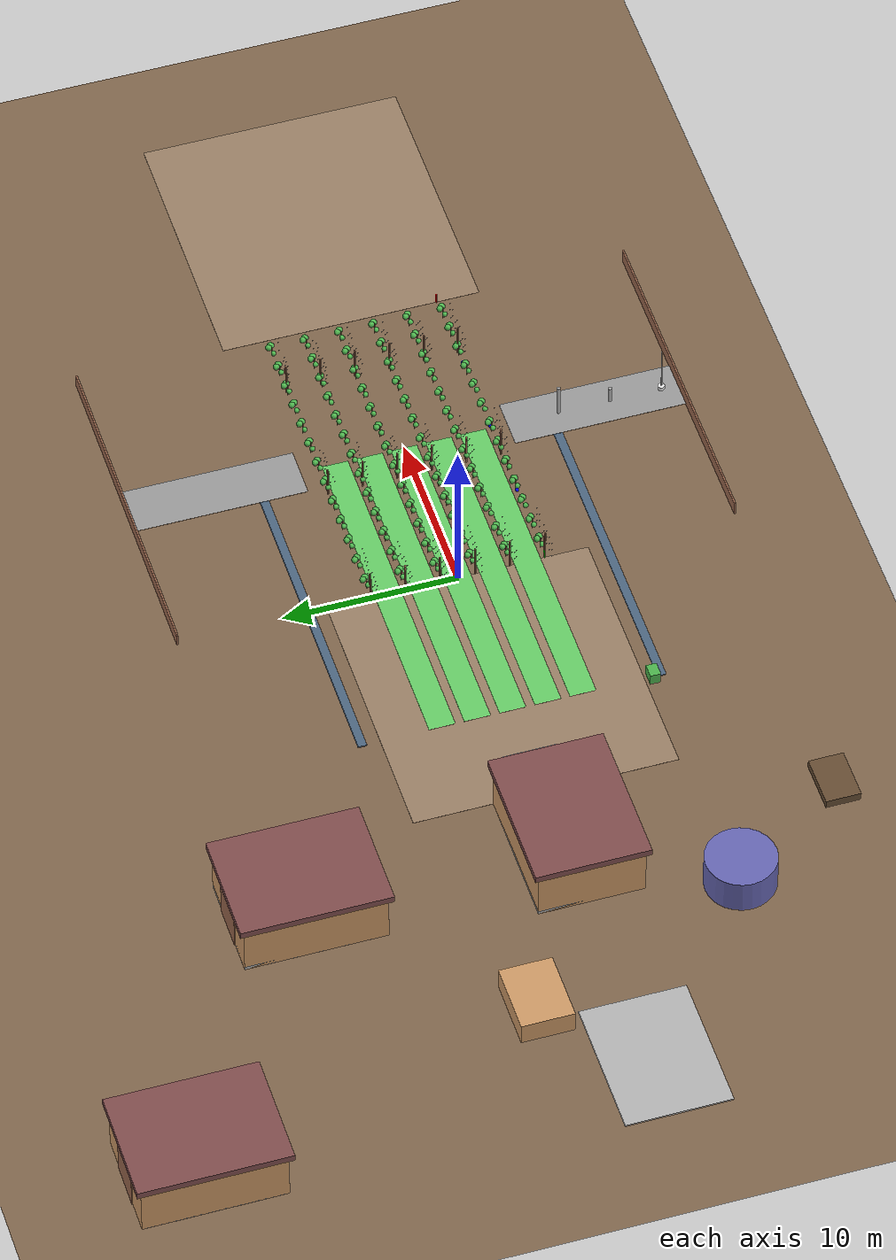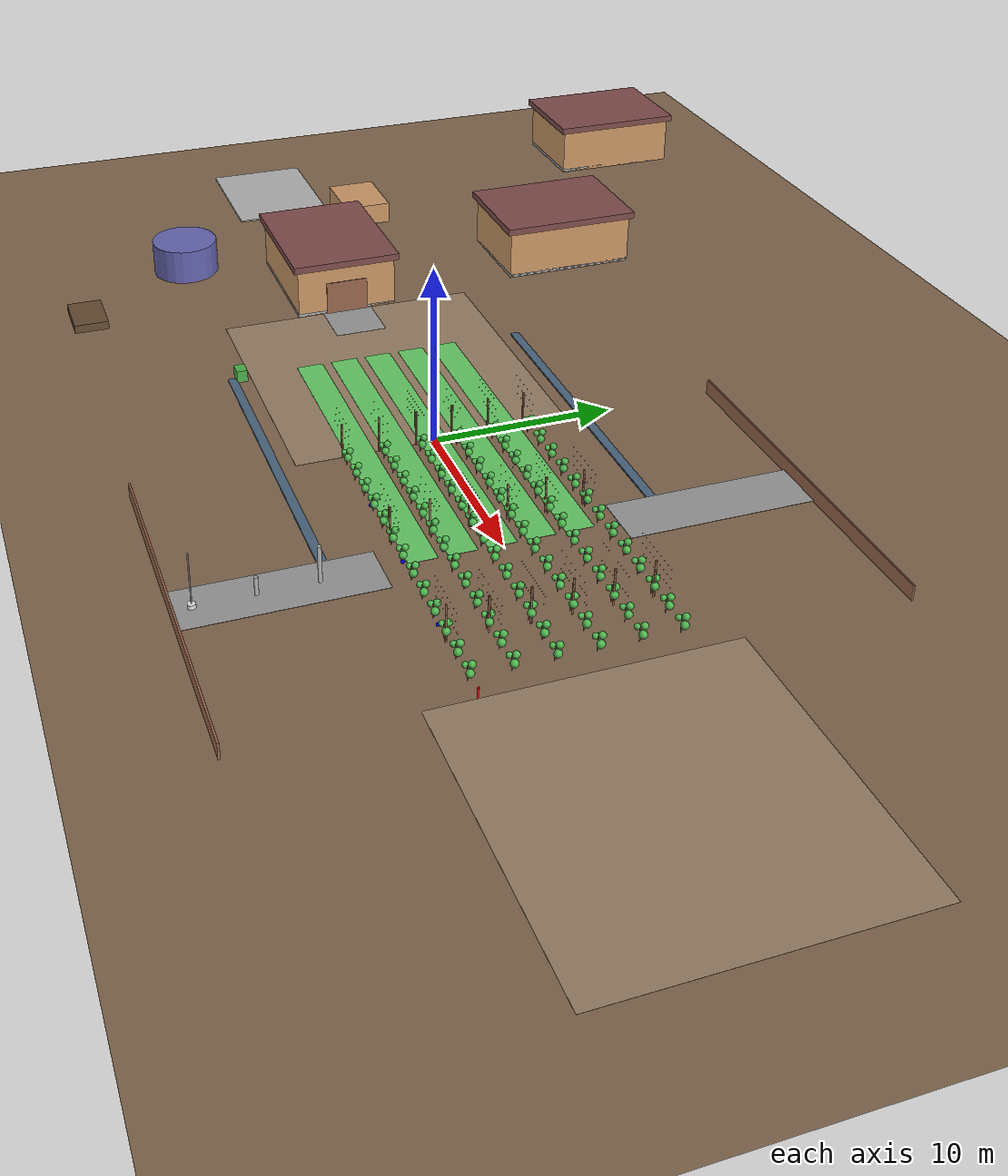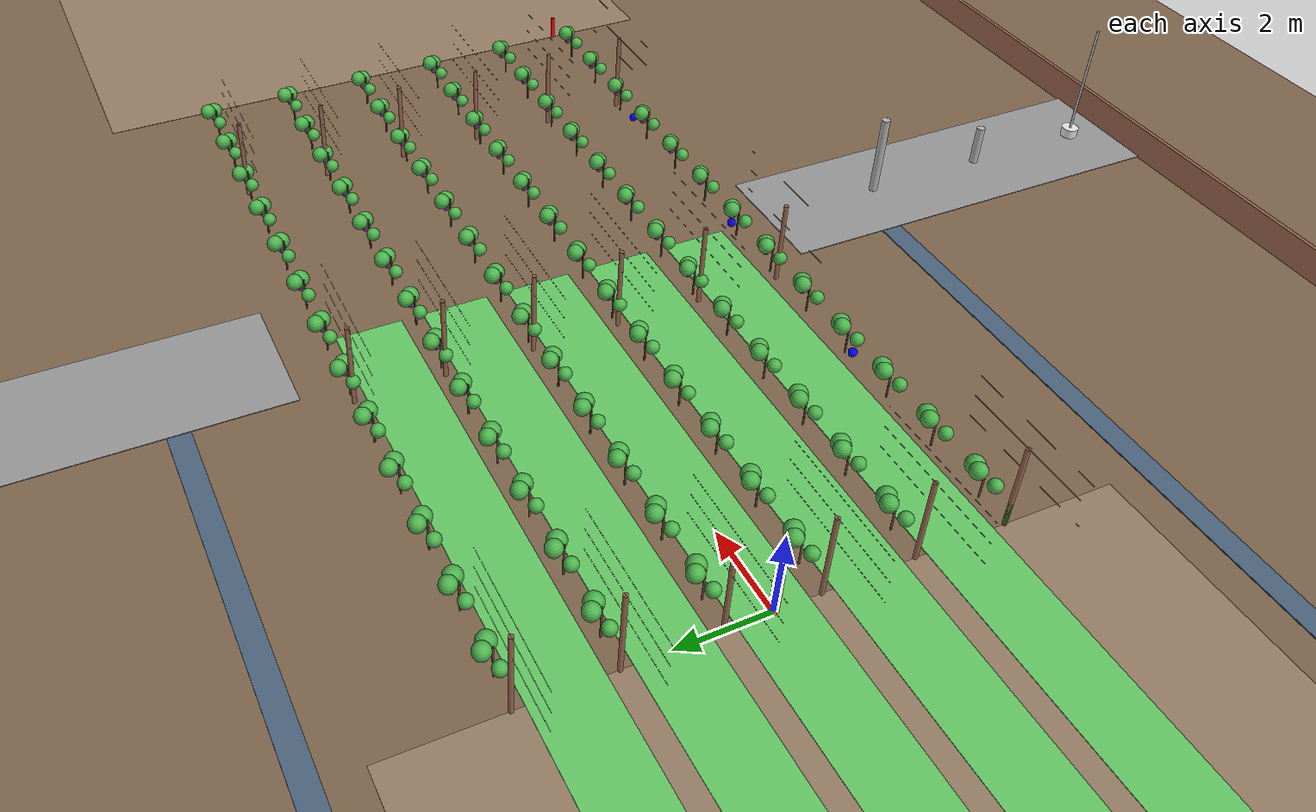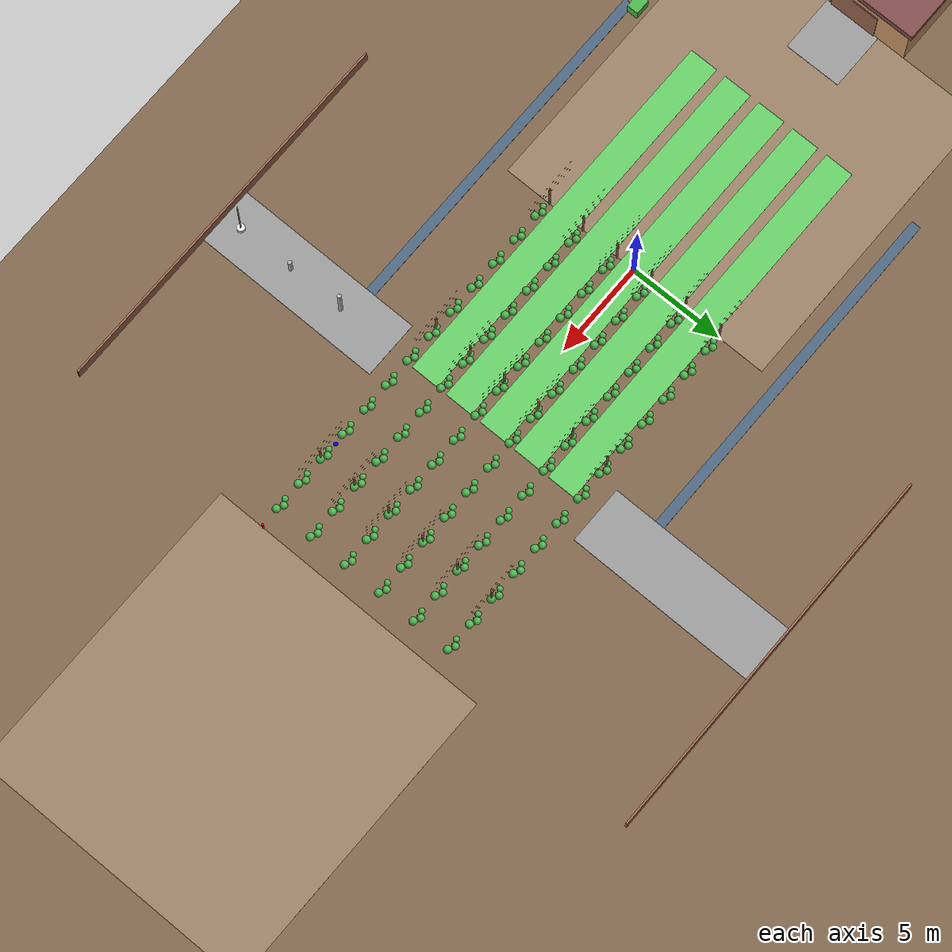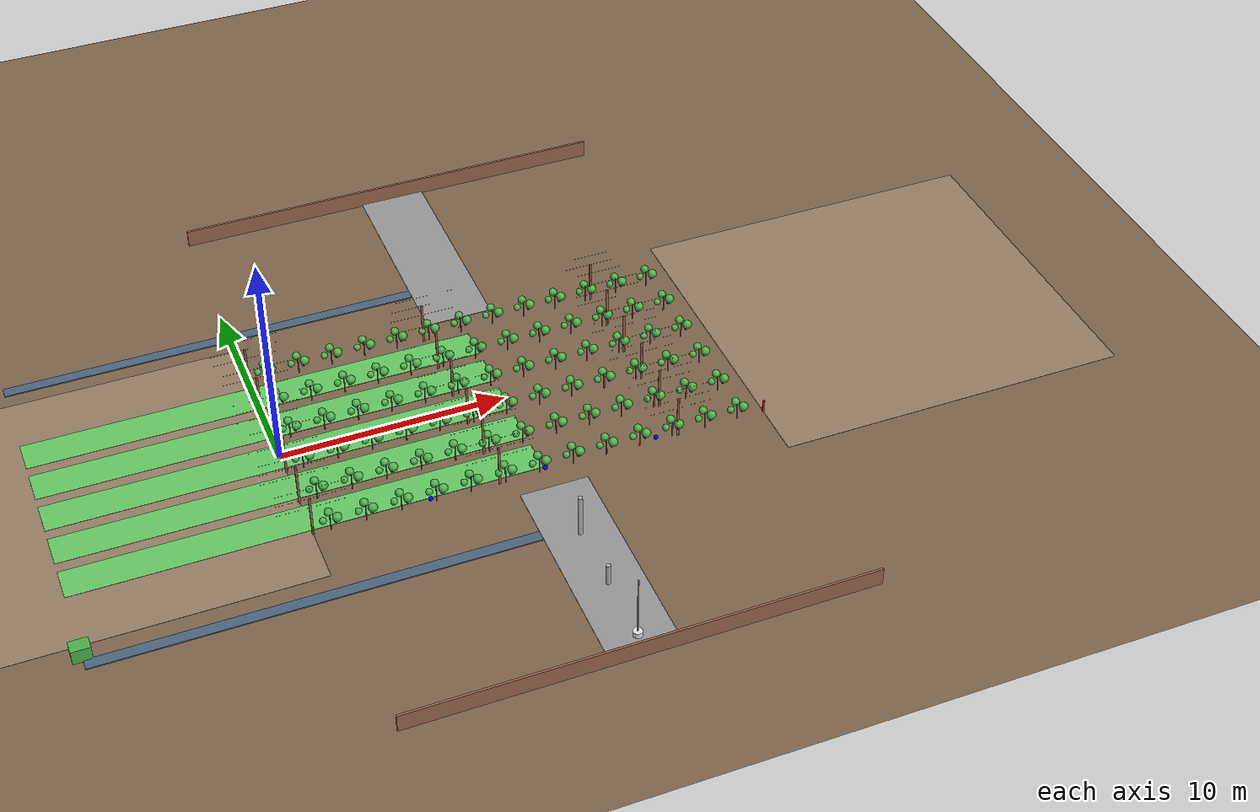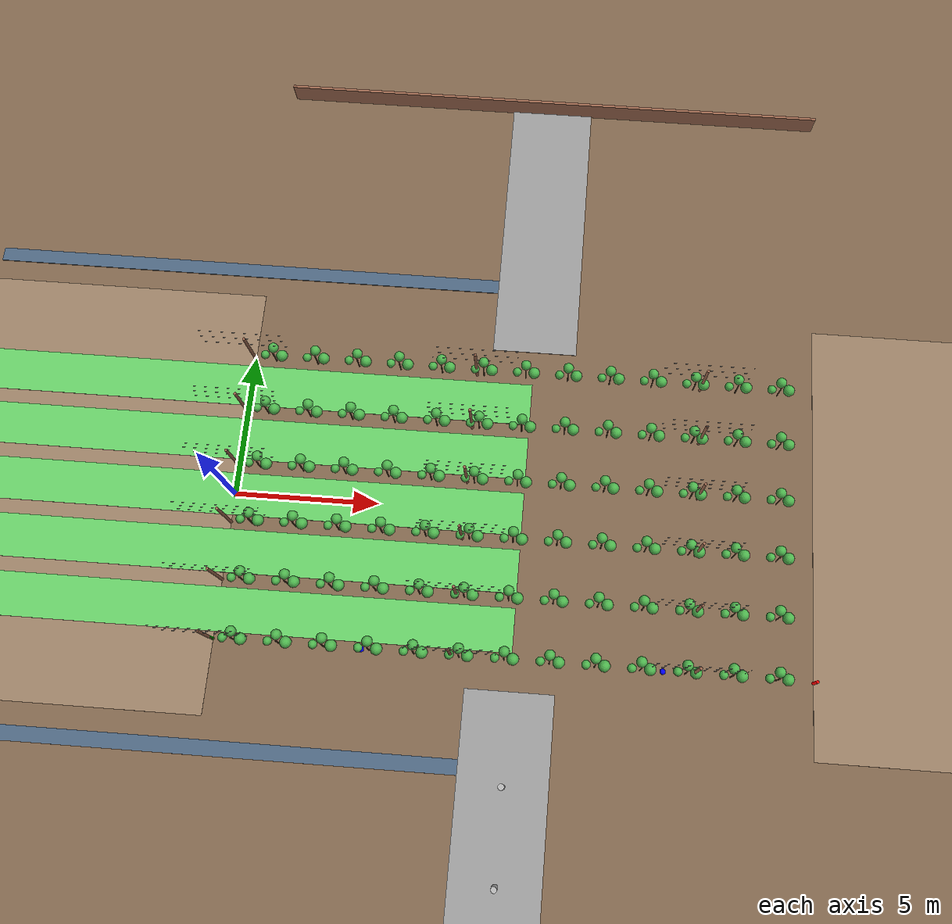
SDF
<?xml version="1.0" ?>
<sdf version="1.8">
  <world name="realistic_vineyard_world">
    <!-- Physics settings optimized for outdoor simulation -->
    <physics name="1ms" type="ignored">
      <max_step_size>0.001</max_step_size>
      <real_time_factor>1.0</real_time_factor>
    </physics>

    <!-- Required system plugins -->
    <plugin filename="gz-sim-physics-system" name="gz::sim::systems::Physics">
    </plugin>

    <plugin filename="gz-sim-sensors-system" name="gz::sim::systems::Sensors">
      <render_engine>ogre2</render_engine>
    </plugin>

    <plugin filename="gz-sim-scene-broadcaster-system" name="gz::sim::systems::SceneBroadcaster">
    </plugin>

    <plugin filename="gz-sim-user-commands-system" name="gz::sim::systems::UserCommands">
    </plugin>

    <plugin filename="gz-sim-imu-system" name="gz::sim::systems::Imu">
    </plugin>

    <!-- Wind system for realistic environmental effects -->
    <plugin filename="gz-sim-wind-effects-system" name="gz::sim::systems::WindEffects">
      <horizontal>
        <magnitude>
          <time_for_rise>10</time_for_rise>
          <sin>
            <amplitude_percent>0.05</amplitude_percent>
            <period>60</period>
          </sin>
        </magnitude>
        <direction>
          <time_for_rise>30</time_for_rise>
          <sin>
            <amplitude>5</amplitude>
            <period>20</period>
          </sin>
        </direction>
      </horizontal>
      <vertical>
        <noise type="gaussian">
          <mean>0</mean>
          <stddev>0.0002</stddev>
        </noise>
      </vertical>
    </plugin>

    <!-- Lighting setup for vineyard environment -->
    <light type="directional" name="sun">
      <cast_shadows>true</cast_shadows>
      <pose>0 0 10 0 0 0</pose>
      <diffuse>0.8 0.8 0.8 1</diffuse>
      <specular>0.5 0.5 0.5 1</specular>
      <direction>-0.5 0.1 -0.9</direction>
    </light>

    <!-- Additional ambient lighting -->
    <light type="directional" name="ambient_light">
      <cast_shadows>false</cast_shadows>
      <pose>0 0 10 0 0 0</pose>
      <diffuse>0.2 0.2 0.3 1</diffuse>
      <specular>0.1 0.1 0.1 1</specular>
      <direction>0 0 -1</direction>
    </light>

    <!-- Spot lights for key areas -->
    <light type="spot" name="vineyard_spotlight_1">
      <pose>0 -10 8 0 1.2 0</pose>
      <diffuse>0.6 0.6 0.4 1</diffuse>
      <specular>0.3 0.3 0.2 1</specular>
      <direction>0 0 -1</direction>
      <spot>
        <inner_angle>0.6</inner_angle>
        <outer_angle>1.0</outer_angle>
        <falloff>1</falloff>
      </spot>
      <cast_shadows>true</cast_shadows>
    </light>

    <light type="spot" name="vineyard_spotlight_2">
      <pose>50 0 8 0 1.2 0</pose>
      <diffuse>0.6 0.6 0.4 1</diffuse>
      <specular>0.3 0.3 0.2 1</specular>
      <direction>0 0 -1</direction>
      <spot>
        <inner_angle>0.6</inner_angle>
        <outer_angle>1.0</outer_angle>
        <falloff>1</falloff>
      </spot>
      <cast_shadows>true</cast_shadows>
    </light>

    <!-- Vineyard terrain with realistic features -->
    <model name="vineyard_terrain">
      <static>true</static>
      <link name="terrain_link">
        <!-- Main ground -->
        <collision name="ground_collision">
          <geometry>
            <plane>
              <normal>0 0 1</normal>
              <size>200 120</size>
            </plane>
          </geometry>
          <surface>
            <friction>
              <ode>
                <mu>0.8</mu>
                <mu2>0.7</mu2>
              </ode>
            </friction>
          </surface>
        </collision>
        <visual name="ground_visual">
          <geometry>
            <plane>
              <normal>0 0 1</normal>
              <size>200 120</size>
            </plane>
          </geometry>
          <material>
            <ambient>0.4 0.3 0.2 1</ambient>
            <diffuse>0.5 0.4 0.3 1</diffuse>
            <specular>0.1 0.1 0.1 1</specular>
          </material>
        </visual>

        <visual name="grass_strip_1">
          <pose>0 -4.0 0.01 0 0 0</pose>
          <geometry>
            <box>
              <size>20.0 1.5 0.02</size>
            </box>
          </geometry>
          <material>
            <ambient>0.3 0.6 0.3 1</ambient>
            <diffuse>0.4 0.8 0.4 1</diffuse>
          </material>
        </visual>
        <visual name="grass_strip_2">
          <pose>0 -2.0 0.01 0 0 0</pose>
          <geometry>
            <box>
              <size>20.0 1.5 0.02</size>
            </box>
          </geometry>
          <material>
            <ambient>0.3 0.6 0.3 1</ambient>
            <diffuse>0.4 0.8 0.4 1</diffuse>
          </material>
        </visual>
        <visual name="grass_strip_3">
          <pose>0 0.0 0.01 0 0 0</pose>
          <geometry>
            <box>
              <size>20.0 1.5 0.02</size>
            </box>
          </geometry>
          <material>
            <ambient>0.3 0.6 0.3 1</ambient>
            <diffuse>0.4 0.8 0.4 1</diffuse>
          </material>
        </visual>
        <visual name="grass_strip_4">
          <pose>0 2.0 0.01 0 0 0</pose>
          <geometry>
            <box>
              <size>20.0 1.5 0.02</size>
            </box>
          </geometry>
          <material>
            <ambient>0.3 0.6 0.3 1</ambient>
            <diffuse>0.4 0.8 0.4 1</diffuse>
          </material>
        </visual>
        <visual name="grass_strip_5">
          <pose>0 4.0 0.01 0 0 0</pose>
          <geometry>
            <box>
              <size>20.0 1.5 0.02</size>
            </box>
          </geometry>
          <material>
            <ambient>0.3 0.6 0.3 1</ambient>
            <diffuse>0.4 0.8 0.4 1</diffuse>
          </material>
        </visual>

        <!-- Headland areas at row ends -->
        <visual name="headland_west">
          <pose>-8.0 0 0.005 0 0 0</pose>
          <geometry>
            <box>
              <size>16.0 15.0 0.01</size>
            </box>
          </geometry>
          <material>
            <ambient>0.5 0.4 0.3 1</ambient>
            <diffuse>0.6 0.5 0.4 1</diffuse>
          </material>
        </visual>

        <visual name="headland_east">
          <pose>28.0 0 0.005 0 0 0</pose>
          <geometry>
            <box>
              <size>16.0 15.0 0.01</size>
            </box>
          </geometry>
          <material>
            <ambient>0.5 0.4 0.3 1</ambient>
            <diffuse>0.6 0.5 0.4 1</diffuse>
          </material>
        </visual>

        <!-- Access roads -->
        <visual name="access_road_main">
          <pose>-18.0 0 0.01 0 0 0</pose>
          <geometry>
            <box>
              <size>10 3 0.02</size>
            </box>
          </geometry>
          <material>
            <ambient>0.4 0.4 0.4 1</ambient>
            <diffuse>0.6 0.6 0.6 1</diffuse>
          </material>
        </visual>

        <visual name="access_road_north">
          <pose>10.0 -11.0 0.01 0 0 1.57</pose>
          <geometry>
            <box>
              <size>10 3 0.02</size>
            </box>
          </geometry>
          <material>
            <ambient>0.4 0.4 0.4 1</ambient>
            <diffuse>0.6 0.6 0.6 1</diffuse>
          </material>
        </visual>

        <visual name="access_road_south">
          <pose>10.0 11.0 0.01 0 0 1.57</pose>
          <geometry>
            <box>
              <size>10 3 0.02</size>
            </box>
          </geometry>
          <material>
            <ambient>0.4 0.4 0.4 1</ambient>
            <diffuse>0.6 0.6 0.6 1</diffuse>
          </material>
        </visual>

        <!-- Drainage ditches -->
        <visual name="drainage_north">
          <pose>0 -8.5 -0.1 0 0 0</pose>
          <geometry>
            <box>
              <size>20.0 0.5 0.2</size>
            </box>
          </geometry>
          <material>
            <ambient>0.2 0.3 0.4 1</ambient>
            <diffuse>0.3 0.4 0.5 1</diffuse>
          </material>
        </visual>

        <visual name="drainage_south">
          <pose>0 8.5 -0.1 0 0 0</pose>
          <geometry>
            <box>
              <size>20.0 0.5 0.2</size>
            </box>
          </geometry>
          <material>
            <ambient>0.2 0.3 0.4 1</ambient>
            <diffuse>0.3 0.4 0.5 1</diffuse>
          </material>
        </visual>
      </link>
    </model>

    <!-- Generated Vineyard Rows -->
    <!-- Vineyard Row 1 -->
    <model name="vineyard_row_1">
      <static>true</static>
      <pose>0 -5.0 0 0 0 0</pose>

      <include>
        <uri>model://home/sam/vinmo/src/vineyard_mower_gazebo/models/vineyard_post</uri>
        <pose>0.0 0 1.0 0 0 0</pose>
        <name>post_1_1</name>
      </include>

      <include>
        <uri>model://home/sam/vinmo/src/vineyard_mower_gazebo/models/vineyard_post</uri>
        <pose>8.0 0 1.0 0 0 0</pose>
        <name>post_1_2</name>
      </include>

      <include>
        <uri>model://home/sam/vinmo/src/vineyard_mower_gazebo/models/vineyard_post</uri>
        <pose>16.0 0 1.0 0 0 0</pose>
        <name>post_1_3</name>
      </include>

      <include>
        <uri>model://home/sam/vinmo/src/vineyard_mower_gazebo/models/vine_plant</uri>
        <pose>0.75 0 0 0 0 0</pose>
        <name>vine_1_1</name>
      </include>

      <include>
        <uri>model://home/sam/vinmo/src/vineyard_mower_gazebo/models/vine_plant</uri>
        <pose>2.25 0 0 0 0 0</pose>
        <name>vine_1_2</name>
      </include>

      <include>
        <uri>model://home/sam/vinmo/src/vineyard_mower_gazebo/models/vine_plant</uri>
        <pose>3.75 0 0 0 0 0</pose>
        <name>vine_1_3</name>
      </include>

      <include>
        <uri>model://home/sam/vinmo/src/vineyard_mower_gazebo/models/vine_plant</uri>
        <pose>5.25 0 0 0 0 0</pose>
        <name>vine_1_4</name>
      </include>

      <include>
        <uri>model://home/sam/vinmo/src/vineyard_mower_gazebo/models/vine_plant</uri>
        <pose>6.75 0 0 0 0 0</pose>
        <name>vine_1_5</name>
      </include>

      <include>
        <uri>model://home/sam/vinmo/src/vineyard_mower_gazebo/models/vine_plant</uri>
        <pose>8.25 0 0 0 0 0</pose>
        <name>vine_1_6</name>
      </include>

      <include>
        <uri>model://home/sam/vinmo/src/vineyard_mower_gazebo/models/vine_plant</uri>
        <pose>9.75 0 0 0 0 0</pose>
        <name>vine_1_7</name>
      </include>

      <include>
        <uri>model://home/sam/vinmo/src/vineyard_mower_gazebo/models/vine_plant</uri>
        <pose>11.25 0 0 0 0 0</pose>
        <name>vine_1_8</name>
      </include>

      <include>
        <uri>model://home/sam/vinmo/src/vineyard_mower_gazebo/models/vine_plant</uri>
        <pose>12.75 0 0 0 0 0</pose>
        <name>vine_1_9</name>
      </include>

      <include>
        <uri>model://home/sam/vinmo/src/vineyard_mower_gazebo/models/vine_plant</uri>
        <pose>14.25 0 0 0 0 0</pose>
        <name>vine_1_10</name>
      </include>

      <include>
        <uri>model://home/sam/vinmo/src/vineyard_mower_gazebo/models/vine_plant</uri>
        <pose>15.75 0 0 0 0 0</pose>
        <name>vine_1_11</name>
      </include>

      <include>
        <uri>model://home/sam/vinmo/src/vineyard_mower_gazebo/models/vine_plant</uri>
        <pose>17.25 0 0 0 0 0</pose>
        <name>vine_1_12</name>
      </include>

      <include>
        <uri>model://home/sam/vinmo/src/vineyard_mower_gazebo/models/vine_plant</uri>
        <pose>18.75 0 0 0 0 0</pose>
        <name>vine_1_13</name>
      </include>

    </model>

    <!-- Vineyard Row 2 -->
    <model name="vineyard_row_2">
      <static>true</static>
      <pose>0 -3.0 0 0 0 0</pose>

      <include>
        <uri>model://home/sam/vinmo/src/vineyard_mower_gazebo/models/vineyard_post</uri>
        <pose>0.0 0 1.0 0 0 0</pose>
        <name>post_2_1</name>
      </include>

      <include>
        <uri>model://home/sam/vinmo/src/vineyard_mower_gazebo/models/vineyard_post</uri>
        <pose>8.0 0 1.0 0 0 0</pose>
        <name>post_2_2</name>
      </include>

      <include>
        <uri>model://home/sam/vinmo/src/vineyard_mower_gazebo/models/vineyard_post</uri>
        <pose>16.0 0 1.0 0 0 0</pose>
        <name>post_2_3</name>
      </include>

      <include>
        <uri>model://home/sam/vinmo/src/vineyard_mower_gazebo/models/vine_plant</uri>
        <pose>0.75 0 0 0 0 0</pose>
        <name>vine_2_1</name>
      </include>

      <include>
        <uri>model://home/sam/vinmo/src/vineyard_mower_gazebo/models/vine_plant</uri>
        <pose>2.25 0 0 0 0 0</pose>
        <name>vine_2_2</name>
      </include>

      <include>
        <uri>model://home/sam/vinmo/src/vineyard_mower_gazebo/models/vine_plant</uri>
        <pose>3.75 0 0 0 0 0</pose>
        <name>vine_2_3</name>
      </include>

      <include>
        <uri>model://home/sam/vinmo/src/vineyard_mower_gazebo/models/vine_plant</uri>
        <pose>5.25 0 0 0 0 0</pose>
        <name>vine_2_4</name>
      </include>

      <include>
        <uri>model://home/sam/vinmo/src/vineyard_mower_gazebo/models/vine_plant</uri>
        <pose>6.75 0 0 0 0 0</pose>
        <name>vine_2_5</name>
      </include>

      <include>
        <uri>model://home/sam/vinmo/src/vineyard_mower_gazebo/models/vine_plant</uri>
        <pose>8.25 0 0 0 0 0</pose>
        <name>vine_2_6</name>
      </include>

      <include>
        <uri>model://home/sam/vinmo/src/vineyard_mower_gazebo/models/vine_plant</uri>
        <pose>9.75 0 0 0 0 0</pose>
        <name>vine_2_7</name>
      </include>

      <include>
        <uri>model://home/sam/vinmo/src/vineyard_mower_gazebo/models/vine_plant</uri>
        <pose>11.25 0 0 0 0 0</pose>
        <name>vine_2_8</name>
      </include>

      <include>
        <uri>model://home/sam/vinmo/src/vineyard_mower_gazebo/models/vine_plant</uri>
        <pose>12.75 0 0 0 0 0</pose>
        <name>vine_2_9</name>
      </include>

      <include>
        <uri>model://home/sam/vinmo/src/vineyard_mower_gazebo/models/vine_plant</uri>
        <pose>14.25 0 0 0 0 0</pose>
        <name>vine_2_10</name>
      </include>

      <include>
        <uri>model://home/sam/vinmo/src/vineyard_mower_gazebo/models/vine_plant</uri>
        <pose>15.75 0 0 0 0 0</pose>
        <name>vine_2_11</name>
      </include>

      <include>
        <uri>model://home/sam/vinmo/src/vineyard_mower_gazebo/models/vine_plant</uri>
        <pose>17.25 0 0 0 0 0</pose>
        <name>vine_2_12</name>
      </include>

      <include>
        <uri>model://home/sam/vinmo/src/vineyard_mower_gazebo/models/vine_plant</uri>
        <pose>18.75 0 0 0 0 0</pose>
        <name>vine_2_13</name>
      </include>
    </model>

    <!-- Vineyard Row 3 -->
    <model name="vineyard_row_3">
      <static>true</static>
      <pose>0 -1.0 0 0 0 0</pose>

      <include>
        <uri>model://home/sam/vinmo/src/vineyard_mower_gazebo/models/vineyard_post</uri>
        <pose>0.0 0 1.0 0 0 0</pose>
        <name>post_3_1</name>
      </include>

      <include>
        <uri>model://home/sam/vinmo/src/vineyard_mower_gazebo/models/vineyard_post</uri>
        <pose>8.0 0 1.0 0 0 0</pose>
        <name>post_3_2</name>
      </include>

      <include>
        <uri>model://home/sam/vinmo/src/vineyard_mower_gazebo/models/vineyard_post</uri>
        <pose>16.0 0 1.0 0 0 0</pose>
        <name>post_3_3</name>
      </include>

      <include>
        <uri>model://home/sam/vinmo/src/vineyard_mower_gazebo/models/vine_plant</uri>
        <pose>0.75 0 0 0 0 0</pose>
        <name>vine_3_1</name>
      </include>

      <include>
        <uri>model://home/sam/vinmo/src/vineyard_mower_gazebo/models/vine_plant</uri>
        <pose>2.25 0 0 0 0 0</pose>
        <name>vine_3_2</name>
      </include>

      <include>
        <uri>model://home/sam/vinmo/src/vineyard_mower_gazebo/models/vine_plant</uri>
        <pose>3.75 0 0 0 0 0</pose>
        <name>vine_3_3</name>
      </include>

      <include>
        <uri>model://home/sam/vinmo/src/vineyard_mower_gazebo/models/vine_plant</uri>
        <pose>5.25 0 0 0 0 0</pose>
        <name>vine_3_4</name>
      </include>

      <include>
        <uri>model://home/sam/vinmo/src/vineyard_mower_gazebo/models/vine_plant</uri>
        <pose>6.75 0 0 0 0 0</pose>
        <name>vine_3_5</name>
      </include>

      <include>
        <uri>model://home/sam/vinmo/src/vineyard_mower_gazebo/models/vine_plant</uri>
        <pose>8.25 0 0 0 0 0</pose>
        <name>vine_3_6</name>
      </include>

      <include>
        <uri>model://home/sam/vinmo/src/vineyard_mower_gazebo/models/vine_plant</uri>
        <pose>9.75 0 0 0 0 0</pose>
        <name>vine_3_7</name>
      </include>

      <include>
        <uri>model://home/sam/vinmo/src/vineyard_mower_gazebo/models/vine_plant</uri>
        <pose>11.25 0 0 0 0 0</pose>
        <name>vine_3_8</name>
      </include>

      <include>
        <uri>model://home/sam/vinmo/src/vineyard_mower_gazebo/models/vine_plant</uri>
        <pose>12.75 0 0 0 0 0</pose>
        <name>vine_3_9</name>
      </include>

      <include>
        <uri>model://home/sam/vinmo/src/vineyard_mower_gazebo/models/vine_plant</uri>
        <pose>14.25 0 0 0 0 0</pose>
        <name>vine_3_10</name>
      </include>

      <include>
        <uri>model://home/sam/vinmo/src/vineyard_mower_gazebo/models/vine_plant</uri>
        <pose>15.75 0 0 0 0 0</pose>
        <name>vine_3_11</name>
      </include>

      <include>
        <uri>model://home/sam/vinmo/src/vineyard_mower_gazebo/models/vine_plant</uri>
        <pose>17.25 0 0 0 0 0</pose>
        <name>vine_3_12</name>
      </include>

      <include>
        <uri>model://home/sam/vinmo/src/vineyard_mower_gazebo/models/vine_plant</uri>
        <pose>18.75 0 0 0 0 0</pose>
        <name>vine_3_13</name>
      </include>

    </model>

    <!-- Vineyard Row 4 -->
    <model name="vineyard_row_4">
      <static>true</static>
      <pose>0 1.0 0 0 0 0</pose>

      <include>
        <uri>model://home/sam/vinmo/src/vineyard_mower_gazebo/models/vineyard_post</uri>
        <pose>0.0 0 1.0 0 0 0</pose>
        <name>post_4_1</name>
      </include>

      <include>
        <uri>model://home/sam/vinmo/src/vineyard_mower_gazebo/models/vineyard_post</uri>
        <pose>8.0 0 1.0 0 0 0</pose>
        <name>post_4_2</name>
      </include>

      <include>
        <uri>model://home/sam/vinmo/src/vineyard_mower_gazebo/models/vineyard_post</uri>
        <pose>16.0 0 1.0 0 0 0</pose>
        <name>post_4_3</name>
      </include>

      <include>
        <uri>model://home/sam/vinmo/src/vineyard_mower_gazebo/models/vine_plant</uri>
        <pose>0.75 0 0 0 0 0</pose>
        <name>vine_4_1</name>
      </include>

      <include>
        <uri>model://home/sam/vinmo/src/vineyard_mower_gazebo/models/vine_plant</uri>
        <pose>2.25 0 0 0 0 0</pose>
        <name>vine_4_2</name>
      </include>

      <include>
        <uri>model://home/sam/vinmo/src/vineyard_mower_gazebo/models/vine_plant</uri>
        <pose>3.75 0 0 0 0 0</pose>
        <name>vine_4_3</name>
      </include>

      <include>
        <uri>model://home/sam/vinmo/src/vineyard_mower_gazebo/models/vine_plant</uri>
        <pose>5.25 0 0 0 0 0</pose>
        <name>vine_4_4</name>
      </include>

      <include>
        <uri>model://home/sam/vinmo/src/vineyard_mower_gazebo/models/vine_plant</uri>
        <pose>6.75 0 0 0 0 0</pose>
        <name>vine_4_5</name>
      </include>

      <include>
        <uri>model://home/sam/vinmo/src/vineyard_mower_gazebo/models/vine_plant</uri>
        <pose>8.25 0 0 0 0 0</pose>
        <name>vine_4_6</name>
      </include>

      <include>
        <uri>model://home/sam/vinmo/src/vineyard_mower_gazebo/models/vine_plant</uri>
        <pose>9.75 0 0 0 0 0</pose>
        <name>vine_4_7</name>
      </include>

      <include>
        <uri>model://home/sam/vinmo/src/vineyard_mower_gazebo/models/vine_plant</uri>
        <pose>11.25 0 0 0 0 0</pose>
        <name>vine_4_8</name>
      </include>

      <include>
        <uri>model://home/sam/vinmo/src/vineyard_mower_gazebo/models/vine_plant</uri>
        <pose>12.75 0 0 0 0 0</pose>
        <name>vine_4_9</name>
      </include>

      <include>
        <uri>model://home/sam/vinmo/src/vineyard_mower_gazebo/models/vine_plant</uri>
        <pose>14.25 0 0 0 0 0</pose>
        <name>vine_4_10</name>
      </include>

      <include>
        <uri>model://home/sam/vinmo/src/vineyard_mower_gazebo/models/vine_plant</uri>
        <pose>15.75 0 0 0 0 0</pose>
        <name>vine_4_11</name>
      </include>

      <include>
        <uri>model://home/sam/vinmo/src/vineyard_mower_gazebo/models/vine_plant</uri>
        <pose>17.25 0 0 0 0 0</pose>
        <name>vine_4_12</name>
      </include>

      <include>
        <uri>model://home/sam/vinmo/src/vineyard_mower_gazebo/models/vine_plant</uri>
        <pose>18.75 0 0 0 0 0</pose>
        <name>vine_4_13</name>
      </include>

    </model>

    <!-- Vineyard Row 5 -->
    <model name="vineyard_row_5">
      <static>true</static>
      <pose>0 3.0 0 0 0 0</pose>

      <include>
        <uri>model://home/sam/vinmo/src/vineyard_mower_gazebo/models/vineyard_post</uri>
        <pose>0.0 0 1.0 0 0 0</pose>
        <name>post_5_1</name>
      </include>

      <include>
        <uri>model://home/sam/vinmo/src/vineyard_mower_gazebo/models/vineyard_post</uri>
        <pose>8.0 0 1.0 0 0 0</pose>
        <name>post_5_2</name>
      </include>

      <include>
        <uri>model://home/sam/vinmo/src/vineyard_mower_gazebo/models/vineyard_post</uri>
        <pose>16.0 0 1.0 0 0 0</pose>
        <name>post_5_3</name>
      </include>

      <include>
        <uri>model://home/sam/vinmo/src/vineyard_mower_gazebo/models/vine_plant</uri>
        <pose>0.75 0 0 0 0 0</pose>
        <name>vine_5_1</name>
      </include>

      <include>
        <uri>model://home/sam/vinmo/src/vineyard_mower_gazebo/models/vine_plant</uri>
        <pose>2.25 0 0 0 0 0</pose>
        <name>vine_5_2</name>
      </include>

      <include>
        <uri>model://home/sam/vinmo/src/vineyard_mower_gazebo/models/vine_plant</uri>
        <pose>3.75 0 0 0 0 0</pose>
        <name>vine_5_3</name>
      </include>

      <include>
        <uri>model://home/sam/vinmo/src/vineyard_mower_gazebo/models/vine_plant</uri>
        <pose>5.25 0 0 0 0 0</pose>
        <name>vine_5_4</name>
      </include>

      <include>
        <uri>model://home/sam/vinmo/src/vineyard_mower_gazebo/models/vine_plant</uri>
        <pose>6.75 0 0 0 0 0</pose>
        <name>vine_5_5</name>
      </include>

      <include>
        <uri>model://home/sam/vinmo/src/vineyard_mower_gazebo/models/vine_plant</uri>
        <pose>8.25 0 0 0 0 0</pose>
        <name>vine_5_6</name>
      </include>

      <include>
        <uri>model://home/sam/vinmo/src/vineyard_mower_gazebo/models/vine_plant</uri>
        <pose>9.75 0 0 0 0 0</pose>
        <name>vine_5_7</name>
      </include>

      <include>
        <uri>model://home/sam/vinmo/src/vineyard_mower_gazebo/models/vine_plant</uri>
        <pose>11.25 0 0 0 0 0</pose>
        <name>vine_5_8</name>
      </include>

      <include>
        <uri>model://home/sam/vinmo/src/vineyard_mower_gazebo/models/vine_plant</uri>
        <pose>12.75 0 0 0 0 0</pose>
        <name>vine_5_9</name>
      </include>

      <include>
        <uri>model://home/sam/vinmo/src/vineyard_mower_gazebo/models/vine_plant</uri>
        <pose>14.25 0 0 0 0 0</pose>
        <name>vine_5_10</name>
      </include>

      <include>
        <uri>model://home/sam/vinmo/src/vineyard_mower_gazebo/models/vine_plant</uri>
        <pose>15.75 0 0 0 0 0</pose>
        <name>vine_5_11</name>
      </include>

      <include>
        <uri>model://home/sam/vinmo/src/vineyard_mower_gazebo/models/vine_plant</uri>
        <pose>17.25 0 0 0 0 0</pose>
        <name>vine_5_12</name>
      </include>

      <include>
        <uri>model://home/sam/vinmo/src/vineyard_mower_gazebo/models/vine_plant</uri>
        <pose>18.75 0 0 0 0 0</pose>
        <name>vine_5_13</name>
      </include>
    </model>

    <!-- Vineyard Row 6 -->
    <model name="vineyard_row_6">
      <static>true</static>
      <pose>0 5.0 0 0 0 0</pose>

      <include>
        <uri>model://home/sam/vinmo/src/vineyard_mower_gazebo/models/vineyard_post</uri>
        <pose>0.0 0 1.0 0 0 0</pose>
        <name>post_6_1</name>
      </include>

      <include>
        <uri>model://home/sam/vinmo/src/vineyard_mower_gazebo/models/vineyard_post</uri>
        <pose>8.0 0 1.0 0 0 0</pose>
        <name>post_6_2</name>
      </include>

      <include>
        <uri>model://home/sam/vinmo/src/vineyard_mower_gazebo/models/vineyard_post</uri>
        <pose>16.0 0 1.0 0 0 0</pose>
        <name>post_6_3</name>
      </include>

      <include>
        <uri>model://home/sam/vinmo/src/vineyard_mower_gazebo/models/vine_plant</uri>
        <pose>0.75 0 0 0 0 0</pose>
        <name>vine_6_1</name>
      </include>

      <include>
        <uri>model://home/sam/vinmo/src/vineyard_mower_gazebo/models/vine_plant</uri>
        <pose>2.25 0 0 0 0 0</pose>
        <name>vine_6_2</name>
      </include>

      <include>
        <uri>model://home/sam/vinmo/src/vineyard_mower_gazebo/models/vine_plant</uri>
        <pose>3.75 0 0 0 0 0</pose>
        <name>vine_6_3</name>
      </include>

      <include>
        <uri>model://home/sam/vinmo/src/vineyard_mower_gazebo/models/vine_plant</uri>
        <pose>5.25 0 0 0 0 0</pose>
        <name>vine_6_4</name>
      </include>

      <include>
        <uri>model://home/sam/vinmo/src/vineyard_mower_gazebo/models/vine_plant</uri>
        <pose>6.75 0 0 0 0 0</pose>
        <name>vine_6_5</name>
      </include>

      <include>
        <uri>model://home/sam/vinmo/src/vineyard_mower_gazebo/models/vine_plant</uri>
        <pose>8.25 0 0 0 0 0</pose>
        <name>vine_6_6</name>
      </include>

      <include>
        <uri>model://home/sam/vinmo/src/vineyard_mower_gazebo/models/vine_plant</uri>
        <pose>9.75 0 0 0 0 0</pose>
        <name>vine_6_7</name>
      </include>

      <include>
        <uri>model://home/sam/vinmo/src/vineyard_mower_gazebo/models/vine_plant</uri>
        <pose>11.25 0 0 0 0 0</pose>
        <name>vine_6_8</name>
      </include>

      <include>
        <uri>model://home/sam/vinmo/src/vineyard_mower_gazebo/models/vine_plant</uri>
        <pose>12.75 0 0 0 0 0</pose>
        <name>vine_6_9</name>
      </include>

      <include>
        <uri>model://home/sam/vinmo/src/vineyard_mower_gazebo/models/vine_plant</uri>
        <pose>14.25 0 0 0 0 0</pose>
        <name>vine_6_10</name>
      </include>

      <include>
        <uri>model://home/sam/vinmo/src/vineyard_mower_gazebo/models/vine_plant</uri>
        <pose>15.75 0 0 0 0 0</pose>
        <name>vine_6_11</name>
      </include>

      <include>
        <uri>model://home/sam/vinmo/src/vineyard_mower_gazebo/models/vine_plant</uri>
        <pose>17.25 0 0 0 0 0</pose>
        <name>vine_6_12</name>
      </include>

      <include>
        <uri>model://home/sam/vinmo/src/vineyard_mower_gazebo/models/vine_plant</uri>
        <pose>18.75 0 0 0 0 0</pose>
        <name>vine_6_13</name>
      </include>

    </model>

    <!-- End Generated Vineyard Rows -->

    <!-- Storage Building 1 -->
    <include>
      <uri>model://home/sam/vinmo/src/vineyard_mower_gazebo/models/storage_building</uri>
      <pose>-20 0 0 0 0 0</pose>
      <name>storage_building_1</name>
    </include>

    <!-- Equipment Shed 1 -->
    <include>
      <uri>model://home/sam/vinmo/src/vineyard_mower_gazebo/models/storage_building</uri>
      <pose>-20 15 0 0 0 1.57</pose>
      <name>equipment_shed_1</name>
    </include>

    <!-- Equipment Shed 2 -->
    <include>
      <uri>model://home/sam/vinmo/src/vineyard_mower_gazebo/models/storage_building</uri>
      <pose>-35 25 0 0 0 1.57</pose>
      <name>equipment_shed_2</name>
    </include>

    <!-- Water tank for irrigation -->
    <model name="water_tank">
      <static>true</static>
      <pose>-25 -8 0 0 0 0</pose>
      <link name="tank_link">
        <collision name="tank_collision">
          <geometry>
            <cylinder>
              <radius>2</radius>
              <length>4</length>
            </cylinder>
          </geometry>
        </collision>
        <visual name="tank_visual">
          <geometry>
            <cylinder>
              <radius>2</radius>
              <length>4</length>
            </cylinder>
          </geometry>
          <material>
            <ambient>0.3 0.3 0.5 1</ambient>
            <diffuse>0.4 0.4 0.7 1</diffuse>
            <specular>0.2 0.2 0.3 1</specular>
          </material>
        </visual>
      </link>
    </model>

    <!-- Tool shed -->
    <model name="tool_shed">
      <static>true</static>
      <pose>-30 5 0 0 0 0</pose>
      <link name="shed_link">
        <collision name="shed_collision">
          <geometry>
            <box>
              <size>4 3 2.5</size>
            </box>
          </geometry>
        </collision>
        <visual name="shed_visual">
          <geometry>
            <box>
              <size>4 3 2.5</size>
            </box>
          </geometry>
          <material>
            <ambient>0.6 0.4 0.3 1</ambient>
            <diffuse>0.8 0.6 0.4 1</diffuse>
          </material>
        </visual>
      </link>
    </model>

    <!-- Compost area -->
    <model name="compost_pile">
      <static>true</static>
      <pose>-20 -15 0 0 0 0</pose>
      <link name="compost_link">
        <collision name="compost_collision">
          <geometry>
            <box>
              <size>3 2 0.8</size>
            </box>
          </geometry>
        </collision>
        <visual name="compost_visual">
          <geometry>
            <box>
              <size>3 2 0.8</size>
            </box>
          </geometry>
          <material>
            <ambient>0.3 0.2 0.1 1</ambient>
            <diffuse>0.4 0.3 0.2 1</diffuse>
          </material>
        </visual>
      </link>
    </model>

    <!-- Equipment parking area -->
    <model name="parking_pad">
      <static>true</static>
      <pose>-35 0 0 0 0 0</pose>
      <link name="parking_link">
        <collision name="parking_collision">
          <geometry>
            <box>
              <size>8 6 0.1</size>
            </box>
          </geometry>
        </collision>
        <visual name="parking_visual">
          <geometry>
            <box>
              <size>8 6 0.1</size>
            </box>
          </geometry>
          <material>
            <ambient>0.5 0.5 0.5 1</ambient>
            <diffuse>0.7 0.7 0.7 1</diffuse>
          </material>
        </visual>
      </link>
    </model>

    <!-- Weather station for environmental monitoring -->
    <model name="weather_station">
      <static>true</static>
      <pose>10 -15 0 0 0 0</pose>
      <link name="station_base">
        <collision name="base_collision">
          <geometry>
            <cylinder>
              <radius>0.2</radius>
              <length>0.5</length>
            </cylinder>
          </geometry>
        </collision>
        <visual name="base_visual">
          <geometry>
            <cylinder>
              <radius>0.2</radius>
              <length>0.5</length>
            </cylinder>
          </geometry>
          <material>
            <ambient>0.8 0.8 0.8 1</ambient>
            <diffuse>0.9 0.9 0.9 1</diffuse>
          </material>
        </visual>
      </link>

      <link name="station_pole">
        <pose>0 0 1.5 0 0 0</pose>
        <collision name="pole_collision">
          <geometry>
            <cylinder>
              <radius>0.03</radius>
              <length>3.0</length>
            </cylinder>
          </geometry>
        </collision>
        <visual name="pole_visual">
          <geometry>
            <cylinder>
              <radius>0.03</radius>
              <length>3.0</length>
            </cylinder>
          </geometry>
          <material>
            <ambient>0.6 0.6 0.6 1</ambient>
            <diffuse>0.7 0.7 0.7 1</diffuse>
          </material>
        </visual>
      </link>

      <joint name="base_to_pole" type="fixed">
        <parent>station_base</parent>
        <child>station_pole</child>
      </joint>
    </model>

    <!-- Irrigation control box -->
    <model name="irrigation_control">
      <static>true</static>
      <pose>-10 -8 0 0 0 0</pose>
      <link name="control_box">
        <collision name="box_collision">
          <geometry>
            <box>
              <size>0.8 0.6 1.2</size>
            </box>
          </geometry>
        </collision>
        <visual name="box_visual">
          <geometry>
            <box>
              <size>0.8 0.6 1.2</size>
            </box>
          </geometry>
          <material>
            <ambient>0.2 0.5 0.2 1</ambient>
            <diffuse>0.3 0.7 0.3 1</diffuse>
          </material>
        </visual>
      </link>
    </model>

    <!-- Boundary fence sections -->
    <model name="fence_north">
      <static>true</static>
      <pose>10.0 -16.0 0 0 0 0</pose>
      <link name="fence_link">
        <collision name="fence_collision">
          <geometry>
            <box>
              <size>20.0 0.1 1.5</size>
            </box>
          </geometry>
        </collision>
        <visual name="fence_visual">
          <geometry>
            <box>
              <size>20.0 0.1 1.5</size>
            </box>
          </geometry>
          <material>
            <ambient>0.4 0.3 0.2 1</ambient>
            <diffuse>0.6 0.4 0.3 1</diffuse>
          </material>
        </visual>
      </link>
    </model>

    <model name="fence_south">
      <static>true</static>
      <pose>10.0 16.0 0 0 0 0</pose>
      <link name="fence_link">
        <collision name="fence_collision">
          <geometry>
            <box>
              <size>20.0 0.1 1.5</size>
            </box>
          </geometry>
        </collision>
        <visual name="fence_visual">
          <geometry>
            <box>
              <size>20.0 0.1 1.5</size>
            </box>
          </geometry>
          <material>
            <ambient>0.4 0.3 0.2 1</ambient>
            <diffuse>0.6 0.4 0.3 1</diffuse>
          </material>
        </visual>
      </link>
    </model>

    <!-- Navigation markers -->
    <model name="gps_marker_start">
      <static>true</static>
      <pose>0 0 0.5 0 0 0</pose>
      <link name="marker_link">
        <visual name="marker_visual">
          <geometry>
            <cylinder>
              <radius>0.1</radius>
              <length>1.0</length>
            </cylinder>
          </geometry>
          <material>
            <ambient>1 0.5 0 1</ambient>
            <diffuse>1 0.7 0 1</diffuse>
            <emissive>0.3 0.15 0 1</emissive>
          </material>
        </visual>
      </link>
    </model>

    <!-- Row start/end markers -->
    <model name="nav_marker_row1_start">
      <static>true</static>
      <pose>0 -5.0 0.3 0 0 0</pose>
      <link name="marker_link">
        <visual name="marker_visual">
          <geometry>
            <cylinder>
              <radius>0.05</radius>
              <length>0.6</length>
            </cylinder>
          </geometry>
          <material>
            <ambient>0 1 0 1</ambient>
            <diffuse>0 1 0 1</diffuse>
            <emissive>0 0.3 0 1</emissive>
          </material>
        </visual>
      </link>
    </model>

    <model name="nav_marker_row1_end">
      <static>true</static>
      <pose>20.0 -5.0 0.3 0 0 0</pose>
      <link name="marker_link">
        <visual name="marker_visual">
          <geometry>
            <cylinder>
              <radius>0.05</radius>
              <length>0.6</length>
            </cylinder>
          </geometry>
          <material>
            <ambient>1 0 0 1</ambient>
            <diffuse>1 0 0 1</diffuse>
            <emissive>0.3 0 0 1</emissive>
          </material>
        </visual>
      </link>
    </model>

    <!-- Waypoint 1 -->
    <model name="waypoint_1">
      <static>true</static>
      <pose>5.0 -5.0 0.2 0 0 0</pose>
      <link name="waypoint_link">
        <visual name="waypoint_visual">
          <geometry>
            <sphere>
              <radius>0.1</radius>
            </sphere>
          </geometry>
          <material>
            <ambient>0 0 1 1</ambient>
            <diffuse>0 0 1 1</diffuse>
            <emissive>0 0 0.2 1</emissive>
          </material>
        </visual>
      </link>
    </model>

    <!-- Waypoint 2 -->
    <model name="waypoint_2">
      <static>true</static>
      <pose>10.0 -5.0 0.2 0 0 0</pose>
      <link name="waypoint_link">
        <visual name="waypoint_visual">
          <geometry>
            <sphere>
              <radius>0.1</radius>
            </sphere>
          </geometry>
          <material>
            <ambient>0 0 1 1</ambient>
            <diffuse>0 0 1 1</diffuse>
            <emissive>0 0 0.2 1</emissive>
          </material>
        </visual>
      </link>
    </model>

    <!-- Waypoint 3 -->
    <model name="waypoint_3">
      <static>true</static>
      <pose>15.0 -5.0 0.2 0 0 0</pose>
      <link name="waypoint_link">
        <visual name="waypoint_visual">
          <geometry>
            <sphere>
              <radius>0.1</radius>
            </sphere>
          </geometry>
          <material>
            <ambient>0 0 1 1</ambient>
            <diffuse>0 0 1 1</diffuse>
            <emissive>0 0 0.2 1</emissive>
          </material>
        </visual>
      </link>
    </model>

    <!-- Gate posts at access points -->
    <model name="gate_1">
      <static>true</static>
      <pose>10.0 -12 0 0 0 0</pose>
      <link name="gate_post_1">
        <collision name="gate_post_1_collision">
          <geometry>
            <cylinder>
              <radius>0.1</radius>
              <length>2.0</length>
            </cylinder>
          </geometry>
        </collision>
        <visual name="gate_post_1_visual">
          <geometry>
            <cylinder>
              <radius>0.1</radius>
              <length>2.0</length>
            </cylinder>
          </geometry>
          <material>
            <ambient>0.5 0.5 0.5 1</ambient>
            <diffuse>0.7 0.7 0.7 1</diffuse>
          </material>
        </visual>
      </link>

      <link name="gate_post_2">
        <pose>0 3 1.0 0 0 0</pose>
        <collision name="gate_post_2_collision">
          <geometry>
            <cylinder>
              <radius>0.1</radius>
              <length>2.0</length>
            </cylinder>
          </geometry>
        </collision>
        <visual name="gate_post_2_visual">
          <geometry>
            <cylinder>
              <radius>0.1</radius>
              <length>2.0</length>
            </cylinder>
          </geometry>
          <material>
            <ambient>0.5 0.5 0.5 1</ambient>
            <diffuse>0.7 0.7 0.7 1</diffuse>
          </material>
        </visual>
      </link>
    </model>

    <!-- Physics configuration -->
    <physics name="default_physics" default="0" type="ode">
      <gravity>0 0 -9.8066</gravity>
      <ode>
        <solver>
          <type>quick</type>
          <iters>150</iters>
          <sor>1.4</sor>
          <use_dynamic_moi_rescaling>0</use_dynamic_moi_rescaling>
        </solver>
        <constraints>
          <cfm>0.00001</cfm>
          <erp>0.2</erp>
          <contact_max_correcting_vel>2000.0</contact_max_correcting_vel>
          <contact_surface_layer>0.01</contact_surface_layer>
        </constraints>
      </ode>
      <max_step_size>0.004</max_step_size>
      <real_time_factor>1.0</real_time_factor>
      <real_time_update_rate>250</real_time_update_rate>
      <magnetic_field>6.0e-06 2.3e-05 -4.2e-05</magnetic_field>
    </physics>

    <!-- Scene configuration -->
    <scene>
      <ambient>0.4 0.4 0.4 1</ambient>
      <background>0.7 0.8 0.9 1.0</background>
      <shadows>true</shadows>
      <sky>
        <clouds>true</clouds>
      </sky>
    </scene>

    <!-- GUI configuration -->
    <gui fullscreen='0'>
      <camera name='user_camera'>
        <pose>-20 -20 15 0 0.5 0.7</pose>
        <view_controller>orbit</view_controller>
        <projection_type>perspective</projection_type>
      </camera>
    </gui>

  </world>
</sdf>

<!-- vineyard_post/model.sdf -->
<sdf version="1.8">
  <model name="vineyard_post">
    <static>true</static>
    <link name="post_link">
      <collision name="post_collision">
        <geometry>
          <cylinder>
            <radius>0.05</radius>
            <length>2.0</length>
          </cylinder>
        </geometry>
      </collision>
      <visual name="post_visual">
        <geometry>
          <cylinder>
            <radius>0.05</radius>
            <length>2.0</length>
          </cylinder>
        </geometry>
        <material>
          <ambient>0.4 0.3 0.2 1</ambient>
          <diffuse>0.6 0.4 0.3 1</diffuse>
          <specular>0.1 0.1 0.1 1</specular>
        </material>
      </visual>
    </link>

    <!-- Trellis wires -->
    <link name="wire_low">
      <pose>0 0 0.5 0 1.57 0</pose>
      <collision name="wire_low_collision">
        <geometry>
          <cylinder>
            <radius>0.003</radius>
            <length>3.0</length>
          </cylinder>
        </geometry>
      </collision>
      <visual name="wire_low_visual">
        <geometry>
          <cylinder>
            <radius>0.003</radius>
            <length>3.0</length>
          </cylinder>
        </geometry>
        <material>
          <ambient>0.3 0.3 0.3 1</ambient>
          <diffuse>0.4 0.4 0.4 1</diffuse>
          <specular>0.8 0.8 0.8 1</specular>
        </material>
      </visual>
    </link>

    <link name="wire_mid">
      <pose>0 0 1.0 0 1.57 0</pose>
      <collision name="wire_mid_collision">
        <geometry>
          <cylinder>
            <radius>0.003</radius>
            <length>3.0</length>
          </cylinder>
        </geometry>
      </collision>
      <visual name="wire_mid_visual">
        <geometry>
          <cylinder>
            <radius>0.003</radius>
            <length>3.0</length>
          </cylinder>
        </geometry>
        <material>
          <ambient>0.3 0.3 0.3 1</ambient>
          <diffuse>0.4 0.4 0.4 1</diffuse>
          <specular>0.8 0.8 0.8 1</specular>
        </material>
      </visual>
    </link>

    <link name="wire_high">
      <pose>0 0 1.5 0 1.57 0</pose>
      <collision name="wire_high_collision">
        <geometry>
          <cylinder>
            <radius>0.003</radius>
            <length>3.0</length>
          </cylinder>
        </geometry>
      </collision>
      <visual name="wire_high_visual">
        <geometry>
          <cylinder>
            <radius>0.003</radius>
            <length>3.0</length>
          </cylinder>
        </geometry>
        <material>
          <ambient>0.3 0.3 0.3 1</ambient>
          <diffuse>0.4 0.4 0.4 1</diffuse>
          <specular>0.8 0.8 0.8 1</specular>
        </material>
      </visual>
    </link>

    <!-- Fixed joints to connect wires to post -->
    <joint name="post_to_wire_low" type="fixed">
      <parent>post_link</parent>
      <child>wire_low</child>
    </joint>

    <joint name="post_to_wire_mid" type="fixed">
      <parent>post_link</parent>
      <child>wire_mid</child>
    </joint>

    <joint name="post_to_wire_high" type="fixed">
      <parent>post_link</parent>
      <child>wire_high</child>
    </joint>
  </model>
</sdf>

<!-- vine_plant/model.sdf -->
<sdf version="1.8">
  <model name="vine_plant">
    <static>true</static>

    <!-- Main vine trunk -->
    <link name="trunk">
      <pose>0 0 0.4 0 0 0</pose>
      <collision name="trunk_collision">
        <geometry>
          <cylinder>
            <radius>0.02</radius>
            <length>0.8</length>
          </cylinder>
        </geometry>
      </collision>
      <visual name="trunk_visual">
        <geometry>
          <cylinder>
            <radius>0.02</radius>
            <length>0.8</length>
          </cylinder>
        </geometry>
        <material>
          <ambient>0.3 0.2 0.1 1</ambient>
          <diffuse>0.4 0.3 0.2 1</diffuse>
          <specular>0.1 0.1 0.1 1</specular>
        </material>
      </visual>
    </link>

    <!-- Foliage cluster 1 -->
    <link name="foliage_1">
      <pose>0.3 0 0.6 0 0 0</pose>
      <collision name="foliage_1_collision">
        <geometry>
          <sphere>
            <radius>0.2</radius>
          </sphere>
        </geometry>
      </collision>
      <visual name="foliage_1_visual">
        <geometry>
          <sphere>
            <radius>0.2</radius>
          </sphere>
        </geometry>
        <material>
          <ambient>0.2 0.5 0.2 1</ambient>
          <diffuse>0.3 0.7 0.3 1</diffuse>
          <specular>0.1 0.2 0.1 1</specular>
        </material>
      </visual>
    </link>

    <!-- Foliage cluster 2 -->
    <link name="foliage_2">
      <pose>-0.3 0 0.6 0 0 0</pose>
      <collision name="foliage_2_collision">
        <geometry>
          <sphere>
            <radius>0.15</radius>
          </sphere>
        </geometry>
      </collision>
      <visual name="foliage_2_visual">
        <geometry>
          <sphere>
            <radius>0.15</radius>
          </sphere>
        </geometry>
        <material>
          <ambient>0.2 0.5 0.2 1</ambient>
          <diffuse>0.3 0.7 0.3 1</diffuse>
          <specular>0.1 0.2 0.1 1</specular>
        </material>
      </visual>
    </link>

    <!-- Foliage cluster 3 -->
    <link name="foliage_3">
      <pose>0 0.2 0.8 0 0 0</pose>
      <collision name="foliage_3_collision">
        <geometry>
          <sphere>
            <radius>0.18</radius>
          </sphere>
        </geometry>
      </collision>
      <visual name="foliage_3_visual">
        <geometry>
          <sphere>
            <radius>0.18</radius>
          </sphere>
        </geometry>
        <material>
          <ambient>0.2 0.5 0.2 1</ambient>
          <diffuse>0.3 0.7 0.3 1</diffuse>
          <specular>0.1 0.2 0.1 1</specular>
        </material>
      </visual>
    </link>

    <!-- Grape clusters (seasonal) -->
    <link name="grapes_1">
      <pose>0.25 0 0.4 0 0 0</pose>
      <collision name="grapes_1_collision">
        <geometry>
          <sphere>
            <radius>0.08</radius>
          </sphere>
        </geometry>
      </collision>
      <visual name="grapes_1_visual">
        <geometry>
          <sphere>
            <radius>0.08</radius>
          </sphere>
        </geometry>
        <material>
          <ambient>0.3 0.1 0.3 1</ambient>
          <diffuse>0.5 0.2 0.5 1</diffuse>
          <specular>0.3 0.3 0.3 1</specular>
        </material>
      </visual>
    </link>

    <!-- Fixed joints -->
    <joint name="trunk_to_foliage_1" type="fixed">
      <parent>trunk</parent>
      <child>foliage_1</child>
    </joint>

    <joint name="trunk_to_foliage_2" type="fixed">
      <parent>trunk</parent>
      <child>foliage_2</child>
    </joint>

    <joint name="trunk_to_foliage_3" type="fixed">
      <parent>trunk</parent>
      <child>foliage_3</child>
    </joint>

    <joint name="trunk_to_grapes_1" type="fixed">
      <parent>trunk</parent>
      <child>grapes_1</child>
    </joint>
  </model>
</sdf>

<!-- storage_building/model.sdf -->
<sdf version="1.8">
  <model name="storage_building">
    <static>true</static>

    <!-- Building foundation -->
    <link name="foundation">
      <pose>0 0 0.1 0 0 0</pose>
      <collision name="foundation_collision">
        <geometry>
          <box>
            <size>8 6 0.2</size>
          </box>
        </geometry>
      </collision>
      <visual name="foundation_visual">
        <geometry>
          <box>
            <size>8 6 0.2</size>
          </box>
        </geometry>
        <material>
          <ambient>0.5 0.5 0.5 1</ambient>
          <diffuse>0.7 0.7 0.7 1</diffuse>
          <specular>0.1 0.1 0.1 1</specular>
        </material>
      </visual>
    </link>

    <!-- Main walls -->
    <link name="walls">
      <pose>0 0 1.5 0 0 0</pose>
      <collision name="walls_collision">
        <geometry>
          <box>
            <size>8 6 3</size>
          </box>
        </geometry>
      </collision>
      <visual name="walls_visual">
        <geometry>
          <box>
            <size>8 6 3</size>
          </box>
        </geometry>
        <material>
          <ambient>0.6 0.4 0.3 1</ambient>
          <diffuse>0.8 0.6 0.4 1</diffuse>
          <specular>0.1 0.1 0.1 1</specular>
        </material>
      </visual>
    </link>

    <!-- Roof -->
    <link name="roof">
      <pose>0 0 3.2 0 0 0</pose>
      <collision name="roof_collision">
        <geometry>
          <box>
            <size>8.5 6.5 0.4</size>
          </box>
        </geometry>
      </collision>
      <visual name="roof_visual">
        <geometry>
          <box>
            <size>8.5 6.5 0.4</size>
          </box>
        </geometry>
        <material>
          <ambient>0.3 0.2 0.2 1</ambient>
          <diffuse>0.5 0.3 0.3 1</diffuse>
          <specular>0.2 0.2 0.2 1</specular>
        </material>
      </visual>
    </link>

    <!-- Door frame -->
    <link name="door_frame">
      <pose>4 0 1.0 0 0 0</pose>
      <collision name="door_frame_collision">
        <geometry>
          <box>
            <size>0.1 2.5 2.0</size>
          </box>
        </geometry>
      </collision>
      <visual name="door_frame_visual">
        <geometry>
          <box>
            <size>0.1 2.5 2.0</size>
          </box>
        </geometry>
        <material>
          <ambient>0.4 0.3 0.2 1</ambient>
          <diffuse>0.6 0.4 0.3 1</diffuse>
          <specular>0.1 0.1 0.1 1</specular>
        </material>
      </visual>
    </link>

    <!-- Fixed joints -->
    <joint name="foundation_to_walls" type="fixed">
      <parent>foundation</parent>
      <child>walls</child>
    </joint>

    <joint name="walls_to_roof" type="fixed">
      <parent>walls</parent>
      <child>roof</child>
    </joint>

    <joint name="walls_to_door_frame" type="fixed">
      <parent>walls</parent>
      <child>door_frame</child>
    </joint>
  </model>
</sdf>
